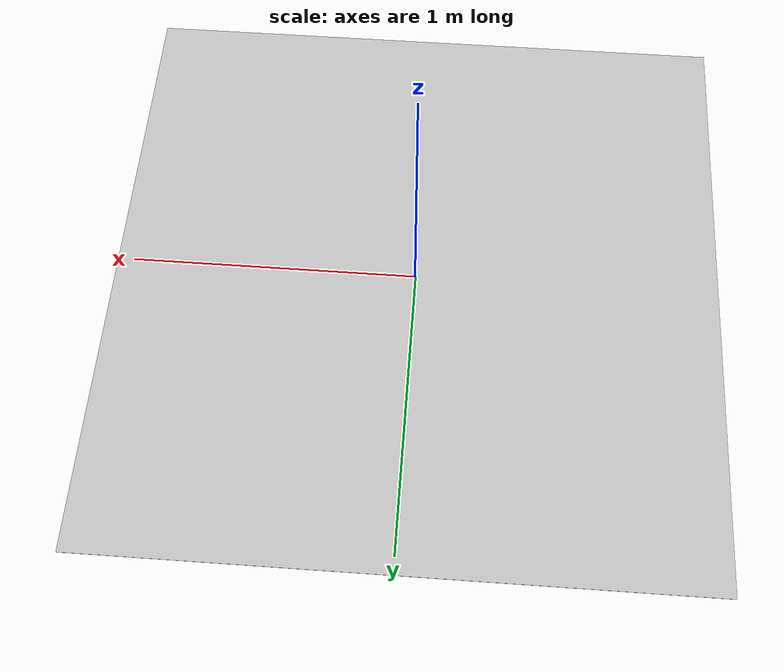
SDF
<sdf version="1.6">
 <world name="default">
  <light name="sun" type="directional">
   <cast_shadows>0</cast_shadows>
   <pose>0 0 10 0 -0 0</pose>
   <diffuse>0.8 0.8 0.8 1</diffuse>
   <specular>0.2 0.2 0.2 1</specular>
   <attenuation>
    <range>1000</range>
    <constant>0.9</constant>
    <linear>0.01</linear>
    <quadratic>0.001</quadratic>
   </attenuation>
   <direction>-0.5 0.1 -0.9</direction>
  </light>
  <gravity>0 0 -9.8</gravity>
  <magnetic_field>6e-06 2.3e-05 -4.2e-05</magnetic_field>
  <atmosphere type="adiabatic"/>
  <physics name="default_physics" default="0" type="ode">
   <max_step_size>0.0016</max_step_size>
   <real_time_factor>1</real_time_factor>
   <real_time_update_rate>625</real_time_update_rate>
  </physics>
  <scene>
   <ambient>0.4 0.4 0.4 1</ambient>
   <background>0 0 0 1</background>
   <shadows>1</shadows>
   <grid>false</grid>
  </scene>
  <spherical_coordinates>
   <surface_model>EARTH_WGS84</surface_model>
   <latitude_deg>0</latitude_deg>
   <longitude_deg>0</longitude_deg>
   <elevation>0</elevation>
   <heading_deg>0</heading_deg>
  </spherical_coordinates>
  <model name="alphabot2_world">
   <static>1</static>
   <link name="link_ground">
    <collision name="collision">
     <geometry><plane><normal>0 0 1</normal><size>6.95 16.7</size></plane></geometry>
     <surface><friction><ode><mu>100</mu><mu2>50</mu2></ode></friction></surface>
    </collision>
    <visual name="visual_ground">
     <cast_shadows>0</cast_shadows>
     <geometry><plane><normal>0 0 1</normal><size>2.12 2.12</size></plane></geometry>
     <material>
      <script>
       <uri>model://materials/scripts</uri>
       <uri>model://materials/textures</uri>
       <name>Pista2/Image</name>
      </script>
     </material>
    </visual>
    <velocity_decay><linear>0</linear><angular>0</angular></velocity_decay>
   </link>
  </model>
 </world>
</sdf>
